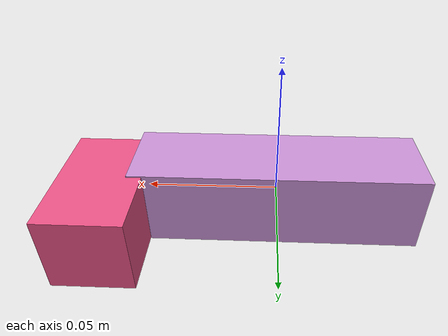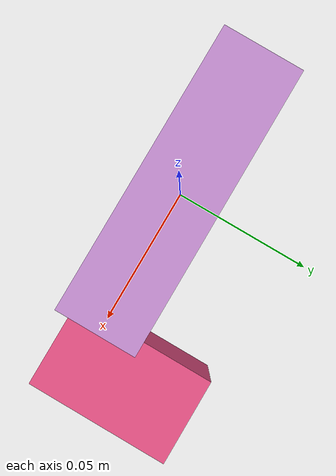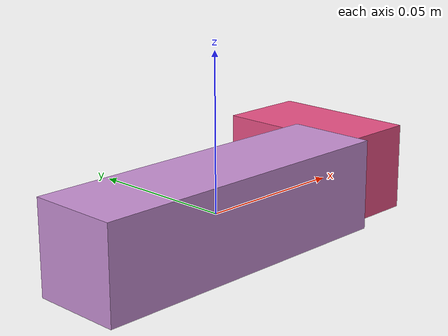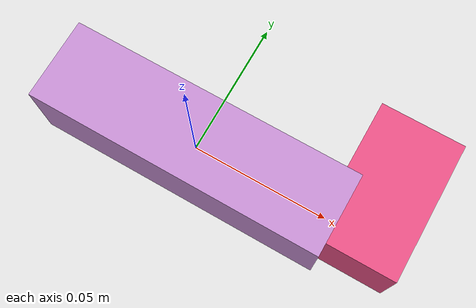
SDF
<sdf version="1.4"><world name="default"><model name="object0"><link name="link1"><pose>0 0 0 0 0 0</pose><inertial><pose>0 0 0 0 0 0</pose><mass>0.05825078315668301</mass><inertia><ixx>8.73761747350245e-06</ixx><ixy>0</ixy><iyy>6.085425187543975e-05</iyy><ixz>0</ixz><iyz>0</iyz><izz>6.085425187543975e-05</izz></inertia></inertial><visual name="link1_visual"><pose>0 0  0 0 0 0</pose><geometry><box><size>0.1078718206605241 0.03 0.03</size></box></geometry><material><diffuse>0.7846133029965676 0.5665799687773145 0.8332408555352677 1</diffuse></material></visual><collision><pose>0 0  0 0 0 0</pose><geometry><box><size>0.1078718206605241 0.03 0.03</size></box></geometry></collision></link><link name="link2"><pose>0.06336859844701098 0.014956329892716193 0 0 0 0</pose><inertial><pose>0 0 0 0 0 0</pose><mass>0.027056061464151605</mass><inertia><ixx>7.556290191758499e-06</ixx><ixy>0</ixy><iyy>3.925383584090662e-06</iyy><ixz>0</ixz><iyz>0</iyz><izz>7.689315827290578e-06</izz></inertia></inertial><visual name="link2_visual"><pose>0 0  0 0 0 0</pose><geometry><box><size>0.03 0.050103817526206684 0.028999999999999998</size></box></geometry><material><diffuse>0.9208349712680235 0.32275415968688764 0.5287303700969087 1</diffuse></material></visual><collision><pose>0 0  0 0 0 0</pose><geometry><box><size>0.03 0.050103817526206684 0.028999999999999998</size></box></geometry></collision></link><joint name="link_joint_0" type="fixed"><parent>link1</parent><child>link2</child><pose>0 0 0 0 0 0</pose><axis><xyz>0 0 1</xyz></axis></joint></model></world></sdf>
